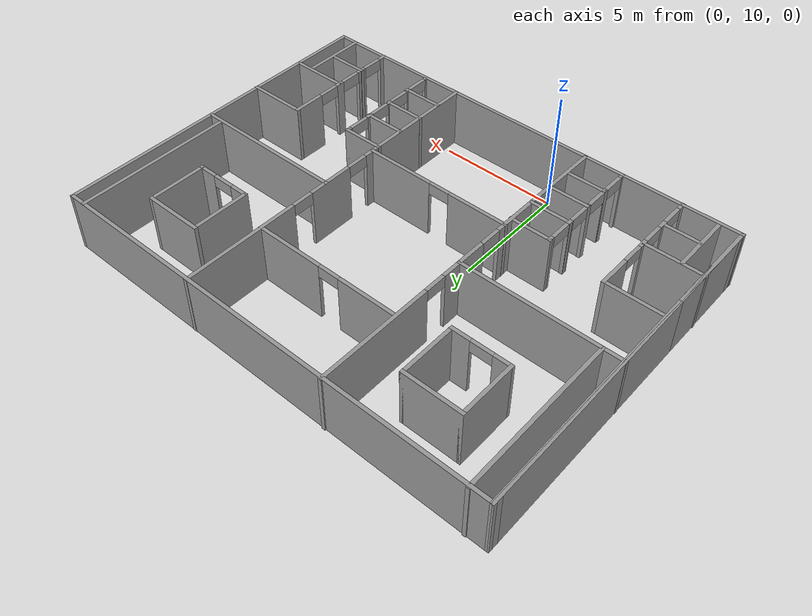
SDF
<?xml version='1.0'?>
<sdf version='1.6'>
  <model name='Mezzanino'>
    <pose frame=''>2.08931 16.402 0 0 -0 0</pose>
    <link name='Wall_103'>
      <pose frame=''>3.22743 0.000523 0 0 0 -1.5708</pose>
      <visual name='Wall_103_Visual_0'>
        <pose frame=''>-4.63496 0 1.25 0 -0 0</pose>
        <geometry>
          <box>
            <size>4.98009 0.15 2.5</size>
          </box>
        </geometry>
        <material>
          <script>
            <uri>file://media/materials/scripts/gazebo.material</uri>
            <name>Gazebo/Grey</name>
          </script>
          <ambient>1 1 1 1</ambient>
        </material>
      </visual>
      <collision name='Wall_103_Collision_0'>
        <geometry>
          <box>
            <size>4.98009 0.15 2.5</size>
          </box>
        </geometry>
        <pose frame=''>-4.63496 0 1.25 0 -0 0</pose>
      </collision>
      <visual name='Wall_103_Visual_1'>
        <pose frame=''>-0.265455 0 1.25 0 -0 0</pose>
        <geometry>
          <box>
            <size>1.95891 0.15 2.5</size>
          </box>
        </geometry>
        <material>
          <script>
            <uri>file://media/materials/scripts/gazebo.material</uri>
            <name>Gazebo/Grey</name>
          </script>
          <ambient>1 1 1 1</ambient>
        </material>
      </visual>
      <collision name='Wall_103_Collision_1'>
        <geometry>
          <box>
            <size>1.95891 0.15 2.5</size>
          </box>
        </geometry>
        <pose frame=''>-0.265455 0 1.25 0 -0 0</pose>
      </collision>
      <visual name='Wall_103_Visual_2'>
        <pose frame=''>4.3695 0 1.25 0 -0 0</pose>
        <geometry>
          <box>
            <size>5.511 0.15 2.5</size>
          </box>
        </geometry>
        <material>
          <script>
            <uri>file://media/materials/scripts/gazebo.material</uri>
            <name>Gazebo/Grey</name>
          </script>
          <ambient>1 1 1 1</ambient>
        </material>
      </visual>
      <collision name='Wall_103_Collision_2'>
        <geometry>
          <box>
            <size>5.511 0.15 2.5</size>
          </box>
        </geometry>
        <pose frame=''>4.3695 0 1.25 0 -0 0</pose>
      </collision>
      <visual name='Wall_103_Visual_3'>
        <pose frame=''>-1.69491 0 2.25 0 -0 0</pose>
        <geometry>
          <box>
            <size>0.9 0.15 0.5</size>
          </box>
        </geometry>
        <material>
          <script>
            <uri>file://media/materials/scripts/gazebo.material</uri>
            <name>Gazebo/Grey</name>
          </script>
          <ambient>1 1 1 1</ambient>
        </material>
      </visual>
      <collision name='Wall_103_Collision_3'>
        <geometry>
          <box>
            <size>0.9 0.15 0.5</size>
          </box>
        </geometry>
        <pose frame=''>-1.69491 0 2.25 0 -0 0</pose>
      </collision>
      <visual name='Wall_103_Visual_4'>
        <pose frame=''>1.164 0 2.25 0 -0 0</pose>
        <geometry>
          <box>
            <size>0.9 0.15 0.5</size>
          </box>
        </geometry>
        <material>
          <script>
            <uri>file://media/materials/scripts/gazebo.material</uri>
            <name>Gazebo/Grey</name>
          </script>
          <ambient>1 1 1 1</ambient>
        </material>
      </visual>
      <collision name='Wall_103_Collision_4'>
        <geometry>
          <box>
            <size>0.9 0.15 0.5</size>
          </box>
        </geometry>
        <pose frame=''>1.164 0 2.25 0 -0 0</pose>
      </collision>
    </link>
    <link name='Wall_105'>
      <pose frame=''>-3.04356 0.031113 0 0 0 -1.5708</pose>
      <visual name='Wall_105_Visual_0'>
        <pose frame=''>-4.65272 0 1.25 0 -0 0</pose>
        <geometry>
          <box>
            <size>4.94455 0.15 2.5</size>
          </box>
        </geometry>
        <material>
          <script>
            <uri>file://media/materials/scripts/gazebo.material</uri>
            <name>Gazebo/Grey</name>
          </script>
          <ambient>1 1 1 1</ambient>
        </material>
      </visual>
      <collision name='Wall_105_Collision_0'>
        <geometry>
          <box>
            <size>4.94455 0.15 2.5</size>
          </box>
        </geometry>
        <pose frame=''>-4.65272 0 1.25 0 -0 0</pose>
      </collision>
      <visual name='Wall_105_Visual_1'>
        <pose frame=''>-0.242635 0 1.25 0 -0 0</pose>
        <geometry>
          <box>
            <size>2.07563 0.15 2.5</size>
          </box>
        </geometry>
        <material>
          <script>
            <uri>file://media/materials/scripts/gazebo.material</uri>
            <name>Gazebo/Grey</name>
          </script>
          <ambient>1 1 1 1</ambient>
        </material>
      </visual>
      <collision name='Wall_105_Collision_1'>
        <geometry>
          <box>
            <size>2.07563 0.15 2.5</size>
          </box>
        </geometry>
        <pose frame=''>-0.242635 0 1.25 0 -0 0</pose>
      </collision>
      <visual name='Wall_105_Visual_2'>
        <pose frame=''>4.41009 0 1.25 0 -0 0</pose>
        <geometry>
          <box>
            <size>5.42982 0.15 2.5</size>
          </box>
        </geometry>
        <material>
          <script>
            <uri>file://media/materials/scripts/gazebo.material</uri>
            <name>Gazebo/Grey</name>
          </script>
          <ambient>1 1 1 1</ambient>
        </material>
      </visual>
      <collision name='Wall_105_Collision_2'>
        <geometry>
          <box>
            <size>5.42982 0.15 2.5</size>
          </box>
        </geometry>
        <pose frame=''>4.41009 0 1.25 0 -0 0</pose>
      </collision>
      <visual name='Wall_105_Visual_3'>
        <pose frame=''>-1.73045 0 2.25 0 -0 0</pose>
        <geometry>
          <box>
            <size>0.9 0.15 0.5</size>
          </box>
        </geometry>
        <material>
          <script>
            <uri>file://media/materials/scripts/gazebo.material</uri>
            <name>Gazebo/Grey</name>
          </script>
          <ambient>1 1 1 1</ambient>
        </material>
      </visual>
      <collision name='Wall_105_Collision_3'>
        <geometry>
          <box>
            <size>0.9 0.15 0.5</size>
          </box>
        </geometry>
        <pose frame=''>-1.73045 0 2.25 0 -0 0</pose>
      </collision>
      <visual name='Wall_105_Visual_4'>
        <pose frame=''>1.24518 0 2.25 0 -0 0</pose>
        <geometry>
          <box>
            <size>0.9 0.15 0.5</size>
          </box>
        </geometry>
        <material>
          <script>
            <uri>file://media/materials/scripts/gazebo.material</uri>
            <name>Gazebo/Grey</name>
          </script>
          <ambient>1 1 1 1</ambient>
        </material>
      </visual>
      <collision name='Wall_105_Collision_4'>
        <geometry>
          <box>
            <size>0.9 0.15 0.5</size>
          </box>
        </geometry>
        <pose frame=''>1.24518 0 2.25 0 -0 0</pose>
      </collision>
    </link>
    <link name='Wall_107'>
      <pose frame=''>0.07436 -2.03402 0 0 -0 0</pose>
      <visual name='Wall_107_Visual_0'>
        <pose frame=''>-1.9063 0 1.25 0 -0 0</pose>
        <geometry>
          <box>
            <size>2.5874 0.15 2.5</size>
          </box>
        </geometry>
        <material>
          <script>
            <uri>file://media/materials/scripts/gazebo.material</uri>
            <name>Gazebo/Grey</name>
          </script>
          <ambient>1 1 1 1</ambient>
        </material>
      </visual>
      <collision name='Wall_107_Collision_0'>
        <geometry>
          <box>
            <size>2.5874 0.15 2.5</size>
          </box>
        </geometry>
        <pose frame=''>-1.9063 0 1.25 0 -0 0</pose>
      </collision>
      <visual name='Wall_107_Visual_1'>
        <pose frame=''>1.7437 0 1.25 0 -0 0</pose>
        <geometry>
          <box>
            <size>2.9126 0.15 2.5</size>
          </box>
        </geometry>
        <material>
          <script>
            <uri>file://media/materials/scripts/gazebo.material</uri>
            <name>Gazebo/Grey</name>
          </script>
          <ambient>1 1 1 1</ambient>
        </material>
      </visual>
      <collision name='Wall_107_Collision_1'>
        <geometry>
          <box>
            <size>2.9126 0.15 2.5</size>
          </box>
        </geometry>
        <pose frame=''>1.7437 0 1.25 0 -0 0</pose>
      </collision>
      <visual name='Wall_107_Visual_2'>
        <pose frame=''>-0.1626 0 2.25 0 -0 0</pose>
        <geometry>
          <box>
            <size>0.9 0.15 0.5</size>
          </box>
        </geometry>
        <material>
          <script>
            <uri>file://media/materials/scripts/gazebo.material</uri>
            <name>Gazebo/Grey</name>
          </script>
          <ambient>1 1 1 1</ambient>
        </material>
      </visual>
      <collision name='Wall_107_Collision_2'>
        <geometry>
          <box>
            <size>0.9 0.15 0.5</size>
          </box>
        </geometry>
        <pose frame=''>-0.1626 0 2.25 0 -0 0</pose>
      </collision>
    </link>
    <link name='Wall_109'>
      <pose frame=''>6.13871 2.88569 0 0 -0 0</pose>
      <visual name='Wall_109_Visual_0'>
        <pose frame=''>-0.862212 0 1.25 0 -0 0</pose>
        <geometry>
          <box>
            <size>0.775575 0.15 2.5</size>
          </box>
        </geometry>
        <material>
          <script>
            <uri>file://media/materials/scripts/gazebo.material</uri>
            <name>Gazebo/Grey</name>
          </script>
          <ambient>1 1 1 1</ambient>
        </material>
      </visual>
      <collision name='Wall_109_Collision_0'>
        <geometry>
          <box>
            <size>0.775575 0.15 2.5</size>
          </box>
        </geometry>
        <pose frame=''>-0.862212 0 1.25 0 -0 0</pose>
      </collision>
      <visual name='Wall_109_Visual_1'>
        <pose frame=''>0.837788 0 1.25 0 -0 0</pose>
        <geometry>
          <box>
            <size>0.824425 0.15 2.5</size>
          </box>
        </geometry>
        <material>
          <script>
            <uri>file://media/materials/scripts/gazebo.material</uri>
            <name>Gazebo/Grey</name>
          </script>
          <ambient>1 1 1 1</ambient>
        </material>
      </visual>
      <collision name='Wall_109_Collision_1'>
        <geometry>
          <box>
            <size>0.824425 0.15 2.5</size>
          </box>
        </geometry>
        <pose frame=''>0.837788 0 1.25 0 -0 0</pose>
      </collision>
      <visual name='Wall_109_Visual_2'>
        <pose frame=''>-0.024425 0 2.25 0 -0 0</pose>
        <geometry>
          <box>
            <size>0.9 0.15 0.5</size>
          </box>
        </geometry>
        <material>
          <script>
            <uri>file://media/materials/scripts/gazebo.material</uri>
            <name>Gazebo/Grey</name>
          </script>
          <ambient>1 1 1 1</ambient>
        </material>
      </visual>
      <collision name='Wall_109_Collision_2'>
        <geometry>
          <box>
            <size>0.9 0.15 0.5</size>
          </box>
        </geometry>
        <pose frame=''>-0.024425 0 2.25 0 -0 0</pose>
      </collision>
    </link>
    <link name='Wall_11'>
      <collision name='Wall_11_Collision'>
        <geometry>
          <box>
            <size>14.0004 0.15 2.5</size>
          </box>
        </geometry>
        <pose frame=''>0 0 1.25 0 -0 0</pose>
      </collision>
      <visual name='Wall_11_Visual'>
        <pose frame=''>0 0 1.25 0 -0 0</pose>
        <geometry>
          <box>
            <size>14.0004 0.15 2.5</size>
          </box>
        </geometry>
        <material>
          <script>
            <uri>file://media/materials/scripts/gazebo.material</uri>
            <name>Gazebo/Grey</name>
          </script>
          <ambient>1 1 1 1</ambient>
        </material>
      </visual>
      <pose frame=''>-9.54461 0.110793 0 0 0 -1.57099</pose>
    </link>
    <link name='Wall_110'>
      <collision name='Wall_110_Collision'>
        <geometry>
          <box>
            <size>2.5 0.15 2.5</size>
          </box>
        </geometry>
        <pose frame=''>0 0 1.25 0 -0 0</pose>
      </collision>
      <visual name='Wall_110_Visual'>
        <pose frame=''>0 0 1.25 0 -0 0</pose>
        <geometry>
          <box>
            <size>2.5 0.15 2.5</size>
          </box>
        </geometry>
        <material>
          <script>
            <uri>file://media/materials/scripts/gazebo.material</uri>
            <name>Gazebo/Grey</name>
          </script>
          <ambient>1 1 1 1</ambient>
        </material>
      </visual>
      <pose frame=''>7.31371 4.06069 0 0 -0 1.5708</pose>
    </link>
    <link name='Wall_111'>
      <collision name='Wall_111_Collision'>
        <geometry>
          <box>
            <size>2.5 0.15 2.5</size>
          </box>
        </geometry>
        <pose frame=''>0 0 1.25 0 -0 0</pose>
      </collision>
      <visual name='Wall_111_Visual'>
        <pose frame=''>0 0 1.25 0 -0 0</pose>
        <geometry>
          <box>
            <size>2.5 0.15 2.5</size>
          </box>
        </geometry>
        <material>
          <script>
            <uri>file://media/materials/scripts/gazebo.material</uri>
            <name>Gazebo/Grey</name>
          </script>
          <ambient>1 1 1 1</ambient>
        </material>
      </visual>
      <pose frame=''>6.13871 5.23569 0 0 -0 3.14159</pose>
    </link>
    <link name='Wall_112'>
      <collision name='Wall_112_Collision'>
        <geometry>
          <box>
            <size>2.5 0.15 2.5</size>
          </box>
        </geometry>
        <pose frame=''>0 0 1.25 0 -0 0</pose>
      </collision>
      <visual name='Wall_112_Visual'>
        <pose frame=''>0 0 1.25 0 -0 0</pose>
        <geometry>
          <box>
            <size>2.5 0.15 2.5</size>
          </box>
        </geometry>
        <material>
          <script>
            <uri>file://media/materials/scripts/gazebo.material</uri>
            <name>Gazebo/Grey</name>
          </script>
          <ambient>1 1 1 1</ambient>
        </material>
      </visual>
      <pose frame=''>4.96371 4.06069 0 0 0 -1.5708</pose>
    </link>
    <link name='Wall_12'>
      <collision name='Wall_12_Collision'>
        <geometry>
          <box>
            <size>4 0.15 2.5</size>
          </box>
        </geometry>
        <pose frame=''>0 0 1.25 0 -0 0</pose>
      </collision>
      <visual name='Wall_12_Visual'>
        <pose frame=''>0 0 1.25 0 -0 0</pose>
        <geometry>
          <box>
            <size>4 0.15 2.5</size>
          </box>
        </geometry>
        <material>
          <script>
            <uri>file://media/materials/scripts/gazebo.material</uri>
            <name>Gazebo/Grey</name>
          </script>
          <ambient>1 1 1 1</ambient>
        </material>
      </visual>
      <pose frame=''>-9.54592 -4.88941 0 0 -0 1.5708</pose>
    </link>
    <link name='Wall_121'>
      <pose frame=''>0.10081 3.69241 0 0 -0 0</pose>
      <visual name='Wall_121_Visual_0'>
        <pose frame=''>-1.91291 0 1.25 0 -0 0</pose>
        <geometry>
          <box>
            <size>2.57417 0.15 2.5</size>
          </box>
        </geometry>
        <material>
          <script>
            <uri>file://media/materials/scripts/gazebo.material</uri>
            <name>Gazebo/Grey</name>
          </script>
          <ambient>1 1 1 1</ambient>
        </material>
      </visual>
      <collision name='Wall_121_Collision_0'>
        <geometry>
          <box>
            <size>2.57417 0.15 2.5</size>
          </box>
        </geometry>
        <pose frame=''>-1.91291 0 1.25 0 -0 0</pose>
      </collision>
      <visual name='Wall_121_Visual_1'>
        <pose frame=''>1.73709 0 1.25 0 -0 0</pose>
        <geometry>
          <box>
            <size>2.92583 0.15 2.5</size>
          </box>
        </geometry>
        <material>
          <script>
            <uri>file://media/materials/scripts/gazebo.material</uri>
            <name>Gazebo/Grey</name>
          </script>
          <ambient>1 1 1 1</ambient>
        </material>
      </visual>
      <collision name='Wall_121_Collision_1'>
        <geometry>
          <box>
            <size>2.92583 0.15 2.5</size>
          </box>
        </geometry>
        <pose frame=''>1.73709 0 1.25 0 -0 0</pose>
      </collision>
      <visual name='Wall_121_Visual_2'>
        <pose frame=''>-0.175825 0 2.25 0 -0 0</pose>
        <geometry>
          <box>
            <size>0.9 0.15 0.5</size>
          </box>
        </geometry>
        <material>
          <script>
            <uri>file://media/materials/scripts/gazebo.material</uri>
            <name>Gazebo/Grey</name>
          </script>
          <ambient>1 1 1 1</ambient>
        </material>
      </visual>
      <collision name='Wall_121_Collision_2'>
        <geometry>
          <box>
            <size>0.9 0.15 0.5</size>
          </box>
        </geometry>
        <pose frame=''>-0.175825 0 2.25 0 -0 0</pose>
      </collision>
    </link>
    <link name='Wall_123'>
      <collision name='Wall_123_Collision'>
        <geometry>
          <box>
            <size>6.65 0.15 2.5</size>
          </box>
        </geometry>
        <pose frame=''>0 0 1.25 0 -0 0</pose>
      </collision>
      <visual name='Wall_123_Visual'>
        <pose frame=''>0 0 1.25 0 -0 0</pose>
        <geometry>
          <box>
            <size>6.65 0.15 2.5</size>
          </box>
        </geometry>
        <material>
          <script>
            <uri>file://media/materials/scripts/gazebo.material</uri>
            <name>Gazebo/Grey</name>
          </script>
          <ambient>1 1 1 1</ambient>
        </material>
      </visual>
      <pose frame=''>-6.30731 0.465994 0 0 -0 0</pose>
    </link>
    <link name='Wall_127'>
      <collision name='Wall_127_Collision'>
        <geometry>
          <box>
            <size>2.5 0.15 2.5</size>
          </box>
        </geometry>
        <pose frame=''>0 0 1.25 0 -0 0</pose>
      </collision>
      <visual name='Wall_127_Visual'>
        <pose frame=''>0 0 1.25 0 -0 0</pose>
        <geometry>
          <box>
            <size>2.5 0.15 2.5</size>
          </box>
        </geometry>
        <material>
          <script>
            <uri>file://media/materials/scripts/gazebo.material</uri>
            <name>Gazebo/Grey</name>
          </script>
          <ambient>1 1 1 1</ambient>
        </material>
      </visual>
      <pose frame=''>-8.35589 -1.98111 0 0 -0 0</pose>
    </link>
    <link name='Wall_128'>
      <pose frame=''>-7.18089 -4.53111 0 0 0 -1.5708</pose>
      <visual name='Wall_128_Visual_0'>
        <pose frame=''>-1.92643 0 1.25 0 -0 0</pose>
        <geometry>
          <box>
            <size>1.39715 0.15 2.5</size>
          </box>
        </geometry>
        <material>
          <script>
            <uri>file://media/materials/scripts/gazebo.material</uri>
            <name>Gazebo/Grey</name>
          </script>
          <ambient>1 1 1 1</ambient>
        </material>
      </visual>
      <collision name='Wall_128_Collision_0'>
        <geometry>
          <box>
            <size>1.39715 0.15 2.5</size>
          </box>
        </geometry>
        <pose frame=''>-1.92643 0 1.25 0 -0 0</pose>
      </collision>
      <visual name='Wall_128_Visual_1'>
        <pose frame=''>-0.129825 0 1.25 0 -0 0</pose>
        <geometry>
          <box>
            <size>0.39605 0.15 2.5</size>
          </box>
        </geometry>
        <material>
          <script>
            <uri>file://media/materials/scripts/gazebo.material</uri>
            <name>Gazebo/Grey</name>
          </script>
          <ambient>1 1 1 1</ambient>
        </material>
      </visual>
      <collision name='Wall_128_Collision_1'>
        <geometry>
          <box>
            <size>0.39605 0.15 2.5</size>
          </box>
        </geometry>
        <pose frame=''>-0.129825 0 1.25 0 -0 0</pose>
      </collision>
      <visual name='Wall_128_Visual_2'>
        <pose frame=''>1.15961 0 1.25 0 -0 0</pose>
        <geometry>
          <box>
            <size>0.382825 0.15 2.5</size>
          </box>
        </geometry>
        <material>
          <script>
            <uri>file://media/materials/scripts/gazebo.material</uri>
            <name>Gazebo/Grey</name>
          </script>
          <ambient>1 1 1 1</ambient>
        </material>
      </visual>
      <collision name='Wall_128_Collision_2'>
        <geometry>
          <box>
            <size>0.382825 0.15 2.5</size>
          </box>
        </geometry>
        <pose frame=''>1.15961 0 1.25 0 -0 0</pose>
      </collision>
      <visual name='Wall_128_Visual_3'>
        <pose frame=''>2.43801 0 1.25 0 -0 0</pose>
        <geometry>
          <box>
            <size>0.373975 0.15 2.5</size>
          </box>
        </geometry>
        <material>
          <script>
            <uri>file://media/materials/scripts/gazebo.material</uri>
            <name>Gazebo/Grey</name>
          </script>
          <ambient>1 1 1 1</ambient>
        </material>
      </visual>
      <collision name='Wall_128_Collision_3'>
        <geometry>
          <box>
            <size>0.373975 0.15 2.5</size>
          </box>
        </geometry>
        <pose frame=''>2.43801 0 1.25 0 -0 0</pose>
      </collision>
      <visual name='Wall_128_Visual_4'>
        <pose frame=''>-0.77785 0 2.25 0 -0 0</pose>
        <geometry>
          <box>
            <size>0.9 0.15 0.5</size>
          </box>
        </geometry>
        <material>
          <script>
            <uri>file://media/materials/scripts/gazebo.material</uri>
            <name>Gazebo/Grey</name>
          </script>
          <ambient>1 1 1 1</ambient>
        </material>
      </visual>
      <collision name='Wall_128_Collision_4'>
        <geometry>
          <box>
            <size>0.9 0.15 0.5</size>
          </box>
        </geometry>
        <pose frame=''>-0.77785 0 2.25 0 -0 0</pose>
      </collision>
      <visual name='Wall_128_Visual_5'>
        <pose frame=''>0.5182 0 2.25 0 -0 0</pose>
        <geometry>
          <box>
            <size>0.9 0.15 0.5</size>
          </box>
        </geometry>
        <material>
          <script>
            <uri>file://media/materials/scripts/gazebo.material</uri>
            <name>Gazebo/Grey</name>
          </script>
          <ambient>1 1 1 1</ambient>
        </material>
      </visual>
      <collision name='Wall_128_Collision_5'>
        <geometry>
          <box>
            <size>0.9 0.15 0.5</size>
          </box>
        </geometry>
        <pose frame=''>0.5182 0 2.25 0 -0 0</pose>
      </collision>
      <visual name='Wall_128_Visual_6'>
        <pose frame=''>1.80103 0 2.25 0 -0 0</pose>
        <geometry>
          <box>
            <size>0.9 0.15 0.5</size>
          </box>
        </geometry>
        <material>
          <script>
            <uri>file://media/materials/scripts/gazebo.material</uri>
            <name>Gazebo/Grey</name>
          </script>
          <ambient>1 1 1 1</ambient>
        </material>
      </visual>
      <collision name='Wall_128_Collision_6'>
        <geometry>
          <box>
            <size>0.9 0.15 0.5</size>
          </box>
        </geometry>
        <pose frame=''>1.80103 0 2.25 0 -0 0</pose>
      </collision>
    </link>
    <link name='Wall_130'>
      <collision name='Wall_130_Collision'>
        <geometry>
          <box>
            <size>2.5 0.15 2.5</size>
          </box>
        </geometry>
        <pose frame=''>0 0 1.25 0 -0 0</pose>
      </collision>
      <visual name='Wall_130_Visual'>
        <pose frame=''>0 0 1.25 0 -0 0</pose>
        <geometry>
          <box>
            <size>2.5 0.15 2.5</size>
          </box>
        </geometry>
        <material>
          <script>
            <uri>file://media/materials/scripts/gazebo.material</uri>
            <name>Gazebo/Grey</name>
          </script>
          <ambient>1 1 1 1</ambient>
        </material>
      </visual>
      <pose frame=''>-8.39556 -4.42774 0 0 -0 0</pose>
    </link>
    <link name='Wall_132'>
      <collision name='Wall_132_Collision'>
        <geometry>
          <box>
            <size>2.65 0.15 2.5</size>
          </box>
        </geometry>
        <pose frame=''>0 0 1.25 0 -0 0</pose>
      </collision>
      <visual name='Wall_132_Visual'>
        <pose frame=''>0 0 1.25 0 -0 0</pose>
        <geometry>
          <box>
            <size>2.65 0.15 2.5</size>
          </box>
        </geometry>
        <material>
          <script>
            <uri>file://media/materials/scripts/gazebo.material</uri>
            <name>Gazebo/Grey</name>
          </script>
          <ambient>1 1 1 1</ambient>
        </material>
      </visual>
      <pose frame=''>-8.68449 -5.73064 0 0 0 -1.5708</pose>
    </link>
    <link name='Wall_134'>
      <collision name='Wall_134_Collision'>
        <geometry>
          <box>
            <size>1.5 0.15 2.5</size>
          </box>
        </geometry>
        <pose frame=''>0 0 1.25 0 -0 0</pose>
      </collision>
      <visual name='Wall_134_Visual'>
        <pose frame=''>0 0 1.25 0 -0 0</pose>
        <geometry>
          <box>
            <size>1.5 0.15 2.5</size>
          </box>
        </geometry>
        <material>
          <script>
            <uri>file://media/materials/scripts/gazebo.material</uri>
            <name>Gazebo/Grey</name>
          </script>
          <ambient>1 1 1 1</ambient>
        </material>
      </visual>
      <pose frame=''>-7.99627 -5.72379 0 0 -0 0</pose>
    </link>
    <link name='Wall_136'>
      <collision name='Wall_136_Collision'>
        <geometry>
          <box>
            <size>1.8 0.15 2.5</size>
          </box>
        </geometry>
        <pose frame=''>0 0 1.25 0 -0 0</pose>
      </collision>
      <visual name='Wall_136_Visual'>
        <pose frame=''>0 0 1.25 0 -0 0</pose>
        <geometry>
          <box>
            <size>1.8 0.15 2.5</size>
          </box>
        </geometry>
        <material>
          <script>
            <uri>file://media/materials/scripts/gazebo.material</uri>
            <name>Gazebo/Grey</name>
          </script>
          <ambient>1 1 1 1</ambient>
        </material>
      </visual>
      <pose frame=''>-3.84919 -2.44399 0 0 -0 3.14159</pose>
    </link>
    <link name='Wall_137'>
      <pose frame=''>-4.67419 -4.74399 0 0 0 -1.5708</pose>
      <visual name='Wall_137_Visual_0'>
        <pose frame=''>-2.2451 0 1.25 0 -0 0</pose>
        <geometry>
          <box>
            <size>0.2598 0.15 2.5</size>
          </box>
        </geometry>
        <material>
          <script>
            <uri>file://media/materials/scripts/gazebo.material</uri>
            <name>Gazebo/Grey</name>
          </script>
          <ambient>1 1 1 1</ambient>
        </material>
      </visual>
      <collision name='Wall_137_Collision_0'>
        <geometry>
          <box>
            <size>0.2598 0.15 2.5</size>
          </box>
        </geometry>
        <pose frame=''>-2.2451 0 1.25 0 -0 0</pose>
      </collision>
      <visual name='Wall_137_Visual_1'>
        <pose frame=''>-1.09652 0 1.25 0 -0 0</pose>
        <geometry>
          <box>
            <size>0.23735 0.15 2.5</size>
          </box>
        </geometry>
        <material>
          <script>
            <uri>file://media/materials/scripts/gazebo.material</uri>
            <name>Gazebo/Grey</name>
          </script>
          <ambient>1 1 1 1</ambient>
        </material>
      </visual>
      <collision name='Wall_137_Collision_1'>
        <geometry>
          <box>
            <size>0.23735 0.15 2.5</size>
          </box>
        </geometry>
        <pose frame=''>-1.09652 0 1.25 0 -0 0</pose>
      </collision>
      <visual name='Wall_137_Visual_2'>
        <pose frame=''>0.0276 0 1.25 0 -0 0</pose>
        <geometry>
          <box>
            <size>0.2109 0.15 2.5</size>
          </box>
        </geometry>
        <material>
          <script>
            <uri>file://media/materials/scripts/gazebo.material</uri>
            <name>Gazebo/Grey</name>
          </script>
          <ambient>1 1 1 1</ambient>
        </material>
      </visual>
      <collision name='Wall_137_Collision_2'>
        <geometry>
          <box>
            <size>0.2109 0.15 2.5</size>
          </box>
        </geometry>
        <pose frame=''>0.0276 0 1.25 0 -0 0</pose>
      </collision>
      <visual name='Wall_137_Visual_3'>
        <pose frame=''>1.13589 0 1.25 0 -0 0</pose>
        <geometry>
          <box>
            <size>0.205672 0.15 2.5</size>
          </box>
        </geometry>
        <material>
          <script>
            <uri>file://media/materials/scripts/gazebo.material</uri>
            <name>Gazebo/Grey</name>
          </script>
          <ambient>1 1 1 1</ambient>
        </material>
      </visual>
      <collision name='Wall_137_Collision_3'>
        <geometry>
          <box>
            <size>0.205672 0.15 2.5</size>
          </box>
        </geometry>
        <pose frame=''>1.13589 0 1.25 0 -0 0</pose>
      </collision>
      <visual name='Wall_137_Visual_4'>
        <pose frame=''>2.25686 0 1.25 0 -0 0</pose>
        <geometry>
          <box>
            <size>0.236278 0.15 2.5</size>
          </box>
        </geometry>
        <material>
          <script>
            <uri>file://media/materials/scripts/gazebo.material</uri>
            <name>Gazebo/Grey</name>
          </script>
          <ambient>1 1 1 1</ambient>
        </material>
      </visual>
      <collision name='Wall_137_Collision_4'>
        <geometry>
          <box>
            <size>0.236278 0.15 2.5</size>
          </box>
        </geometry>
        <pose frame=''>2.25686 0 1.25 0 -0 0</pose>
      </collision>
      <visual name='Wall_137_Visual_5'>
        <pose frame=''>-1.6652 0 2.25 0 -0 0</pose>
        <geometry>
          <box>
            <size>0.9 0.15 0.5</size>
          </box>
        </geometry>
        <material>
          <script>
            <uri>file://media/materials/scripts/gazebo.material</uri>
            <name>Gazebo/Grey</name>
          </script>
          <ambient>1 1 1 1</ambient>
        </material>
      </visual>
      <collision name='Wall_137_Collision_5'>
        <geometry>
          <box>
            <size>0.9 0.15 0.5</size>
          </box>
        </geometry>
        <pose frame=''>-1.6652 0 2.25 0 -0 0</pose>
      </collision>
      <visual name='Wall_137_Visual_6'>
        <pose frame=''>-0.52785 0 2.25 0 -0 0</pose>
        <geometry>
          <box>
            <size>0.9 0.15 0.5</size>
          </box>
        </geometry>
        <material>
          <script>
            <uri>file://media/materials/scripts/gazebo.material</uri>
            <name>Gazebo/Grey</name>
          </script>
          <ambient>1 1 1 1</ambient>
        </material>
      </visual>
      <collision name='Wall_137_Collision_6'>
        <geometry>
          <box>
            <size>0.9 0.15 0.5</size>
          </box>
        </geometry>
        <pose frame=''>-0.52785 0 2.25 0 -0 0</pose>
      </collision>
      <visual name='Wall_137_Visual_7'>
        <pose frame=''>0.58305 0 2.25 0 -0 0</pose>
        <geometry>
          <box>
            <size>0.9 0.15 0.5</size>
          </box>
        </geometry>
        <material>
          <script>
            <uri>file://media/materials/scripts/gazebo.material</uri>
            <name>Gazebo/Grey</name>
          </script>
          <ambient>1 1 1 1</ambient>
        </material>
      </visual>
      <collision name='Wall_137_Collision_7'>
        <geometry>
          <box>
            <size>0.9 0.15 0.5</size>
          </box>
        </geometry>
        <pose frame=''>0.58305 0 2.25 0 -0 0</pose>
      </collision>
      <visual name='Wall_137_Visual_8'>
        <pose frame=''>1.68872 0 2.25 0 -0 0</pose>
        <geometry>
          <box>
            <size>0.9 0.15 0.5</size>
          </box>
        </geometry>
        <material>
          <script>
            <uri>file://media/materials/scripts/gazebo.material</uri>
            <name>Gazebo/Grey</name>
          </script>
          <ambient>1 1 1 1</ambient>
        </material>
      </visual>
      <collision name='Wall_137_Collision_8'>
        <geometry>
          <box>
            <size>0.9 0.15 0.5</size>
          </box>
        </geometry>
        <pose frame=''>1.68872 0 2.25 0 -0 0</pose>
      </collision>
    </link>
    <link name='Wall_139'>
      <collision name='Wall_139_Collision'>
        <geometry>
          <box>
            <size>1.75 0.15 2.5</size>
          </box>
        </geometry>
        <pose frame=''>0 0 1.25 0 -0 0</pose>
      </collision>
      <visual name='Wall_139_Visual'>
        <pose frame=''>0 0 1.25 0 -0 0</pose>
        <geometry>
          <box>
            <size>1.75 0.15 2.5</size>
          </box>
        </geometry>
        <material>
          <script>
            <uri>file://media/materials/scripts/gazebo.material</uri>
            <name>Gazebo/Grey</name>
          </script>
          <ambient>1 1 1 1</ambient>
        </material>
      </visual>
      <pose frame=''>-3.88038 -3.61847 0 0 -0 0</pose>
    </link>
    <link name='Wall_14'>
      <collision name='Wall_14_Collision'>
        <geometry>
          <box>
            <size>14.25 0.15 2.5</size>
          </box>
        </geometry>
        <pose frame=''>0 0 1.25 0 -0 0</pose>
      </collision>
      <visual name='Wall_14_Visual'>
        <pose frame=''>0 0 1.25 0 -0 0</pose>
        <geometry>
          <box>
            <size>14.25 0.15 2.5</size>
          </box>
        </geometry>
        <material>
          <script>
            <uri>file://media/materials/scripts/gazebo.material</uri>
            <name>Gazebo/Grey</name>
          </script>
          <ambient>1 1 1 1</ambient>
        </material>
      </visual>
      <pose frame=''>-9.54331 -0.014005 0 0 -0 1.5708</pose>
    </link>
    <link name='Wall_141'>
      <collision name='Wall_141_Collision'>
        <geometry>
          <box>
            <size>1.75 0.15 2.5</size>
          </box>
        </geometry>
        <pose frame=''>0 0 1.25 0 -0 0</pose>
      </collision>
      <visual name='Wall_141_Visual'>
        <pose frame=''>0 0 1.25 0 -0 0</pose>
        <geometry>
          <box>
            <size>1.75 0.15 2.5</size>
          </box>
        </geometry>
        <material>
          <script>
            <uri>file://media/materials/scripts/gazebo.material</uri>
            <name>Gazebo/Grey</name>
          </script>
          <ambient>1 1 1 1</ambient>
        </material>
      </visual>
      <pose frame=''>-3.85738 -4.75697 0 0 -0 0</pose>
    </link>
    <link name='Wall_143'>
      <collision name='Wall_143_Collision'>
        <geometry>
          <box>
            <size>1.75 0.15 2.5</size>
          </box>
        </geometry>
        <pose frame=''>0 0 1.25 0 -0 0</pose>
      </collision>
      <visual name='Wall_143_Visual'>
        <pose frame=''>0 0 1.25 0 -0 0</pose>
        <geometry>
          <box>
            <size>1.75 0.15 2.5</size>
          </box>
        </geometry>
        <material>
          <script>
            <uri>file://media/materials/scripts/gazebo.material</uri>
            <name>Gazebo/Grey</name>
          </script>
          <ambient>1 1 1 1</ambient>
        </material>
      </visual>
      <pose frame=''>-3.84588 -5.83797 0 0 -0 0</pose>
    </link>
    <link name='Wall_146'>
      <collision name='Wall_146_Collision'>
        <geometry>
          <box>
            <size>6.4 0.15 2.5</size>
          </box>
        </geometry>
        <pose frame=''>0 0 1.25 0 -0 0</pose>
      </collision>
      <visual name='Wall_146_Visual'>
        <pose frame=''>0 0 1.25 0 -0 0</pose>
        <geometry>
          <box>
            <size>6.4 0.15 2.5</size>
          </box>
        </geometry>
        <material>
          <script>
            <uri>file://media/materials/scripts/gazebo.material</uri>
            <name>Gazebo/Grey</name>
          </script>
          <ambient>1 1 1 1</ambient>
        </material>
      </visual>
      <pose frame=''>6.35352 0.497887 0 0 -0 0</pose>
    </link>
    <link name='Wall_148'>
      <collision name='Wall_148_Collision'>
        <geometry>
          <box>
            <size>6.6 0.15 2.5</size>
          </box>
        </geometry>
        <pose frame=''>0 0 1.25 0 -0 0</pose>
      </collision>
      <visual name='Wall_148_Visual'>
        <pose frame=''>0 0 1.25 0 -0 0</pose>
        <geometry>
          <box>
            <size>6.6 0.15 2.5</size>
          </box>
        </geometry>
        <material>
          <script>
            <uri>file://media/materials/scripts/gazebo.material</uri>
            <name>Gazebo/Grey</name>
          </script>
          <ambient>1 1 1 1</ambient>
        </material>
      </visual>
      <pose frame=''>8.91659 3.79744 0 0 0 -1.5708</pose>
    </link>
    <link name='Wall_15'>
      <collision name='Wall_15_Collision'>
        <geometry>
          <box>
            <size>19.2474 0.15 2.5</size>
          </box>
        </geometry>
        <pose frame=''>0 0 1.25 0 -0 0</pose>
      </collision>
      <visual name='Wall_15_Visual'>
        <pose frame=''>0 0 1.25 0 -0 0</pose>
        <geometry>
          <box>
            <size>19.2474 0.15 2.5</size>
          </box>
        </geometry>
        <material>
          <script>
            <uri>file://media/materials/scripts/gazebo.material</uri>
            <name>Gazebo/Grey</name>
          </script>
          <ambient>1 1 1 1</ambient>
        </material>
      </visual>
      <pose frame=''>0.00519 7.03599 0 0 -0 0</pose>
    </link>
    <link name='Wall_150'>
      <collision name='Wall_150_Collision'>
        <geometry>
          <box>
            <size>1.75 0.15 2.5</size>
          </box>
        </geometry>
        <pose frame=''>0 0 1.25 0 -0 0</pose>
      </collision>
      <visual name='Wall_150_Visual'>
        <pose frame=''>0 0 1.25 0 -0 0</pose>
        <geometry>
          <box>
            <size>1.75 0.15 2.5</size>
          </box>
        </geometry>
        <material>
          <script>
            <uri>file://media/materials/scripts/gazebo.material</uri>
            <name>Gazebo/Grey</name>
          </script>
          <ambient>1 1 1 1</ambient>
        </material>
      </visual>
      <pose frame=''>4.01331 -2.34615 0 0 -0 0</pose>
    </link>
    <link name='Wall_151'>
      <pose frame=''>4.81331 -4.64615 0 0 0 -1.5708</pose>
      <visual name='Wall_151_Visual_0'>
        <pose frame=''>-2.25072 0 1.25 0 -0 0</pose>
        <geometry>
          <box>
            <size>0.248559 0.15 2.5</size>
          </box>
        </geometry>
        <material>
          <script>
            <uri>file://media/materials/scripts/gazebo.material</uri>
            <name>Gazebo/Grey</name>
          </script>
          <ambient>1 1 1 1</ambient>
        </material>
      </visual>
      <collision name='Wall_151_Collision_0'>
        <geometry>
          <box>
            <size>0.248559 0.15 2.5</size>
          </box>
        </geometry>
        <pose frame=''>-2.25072 0 1.25 0 -0 0</pose>
      </collision>
      <visual name='Wall_151_Visual_1'>
        <pose frame=''>-1.0757 0 1.25 0 -0 0</pose>
        <geometry>
          <box>
            <size>0.301491 0.15 2.5</size>
          </box>
        </geometry>
        <material>
          <script>
            <uri>file://media/materials/scripts/gazebo.material</uri>
            <name>Gazebo/Grey</name>
          </script>
          <ambient>1 1 1 1</ambient>
        </material>
      </visual>
      <collision name='Wall_151_Collision_1'>
        <geometry>
          <box>
            <size>0.301491 0.15 2.5</size>
          </box>
        </geometry>
        <pose frame=''>-1.0757 0 1.25 0 -0 0</pose>
      </collision>
      <visual name='Wall_151_Visual_2'>
        <pose frame=''>0.087774 0 1.25 0 -0 0</pose>
        <geometry>
          <box>
            <size>0.225447 0.15 2.5</size>
          </box>
        </geometry>
        <material>
          <script>
            <uri>file://media/materials/scripts/gazebo.material</uri>
            <name>Gazebo/Grey</name>
          </script>
          <ambient>1 1 1 1</ambient>
        </material>
      </visual>
      <collision name='Wall_151_Collision_2'>
        <geometry>
          <box>
            <size>0.225447 0.15 2.5</size>
          </box>
        </geometry>
        <pose frame=''>0.087774 0 1.25 0 -0 0</pose>
      </collision>
      <visual name='Wall_151_Visual_3'>
        <pose frame=''>1.22083 0 1.25 0 -0 0</pose>
        <geometry>
          <box>
            <size>0.240656 0.15 2.5</size>
          </box>
        </geometry>
        <material>
          <script>
            <uri>file://media/materials/scripts/gazebo.material</uri>
            <name>Gazebo/Grey</name>
          </script>
          <ambient>1 1 1 1</ambient>
        </material>
      </visual>
      <collision name='Wall_151_Collision_3'>
        <geometry>
          <box>
            <size>0.240656 0.15 2.5</size>
          </box>
        </geometry>
        <pose frame=''>1.22083 0 1.25 0 -0 0</pose>
      </collision>
      <visual name='Wall_151_Visual_4'>
        <pose frame=''>2.30808 0 1.25 0 -0 0</pose>
        <geometry>
          <box>
            <size>0.133846 0.15 2.5</size>
          </box>
        </geometry>
        <material>
          <script>
            <uri>file://media/materials/scripts/gazebo.material</uri>
            <name>Gazebo/Grey</name>
          </script>
          <ambient>1 1 1 1</ambient>
        </material>
      </visual>
      <collision name='Wall_151_Collision_4'>
        <geometry>
          <box>
            <size>0.133846 0.15 2.5</size>
          </box>
        </geometry>
        <pose frame=''>2.30808 0 1.25 0 -0 0</pose>
      </collision>
      <visual name='Wall_151_Visual_5'>
        <pose frame=''>-1.67644 0 2.25 0 -0 0</pose>
        <geometry>
          <box>
            <size>0.9 0.15 0.5</size>
          </box>
        </geometry>
        <material>
          <script>
            <uri>file://media/materials/scripts/gazebo.material</uri>
            <name>Gazebo/Grey</name>
          </script>
          <ambient>1 1 1 1</ambient>
        </material>
      </visual>
      <collision name='Wall_151_Collision_5'>
        <geometry>
          <box>
            <size>0.9 0.15 0.5</size>
          </box>
        </geometry>
        <pose frame=''>-1.67644 0 2.25 0 -0 0</pose>
      </collision>
      <visual name='Wall_151_Visual_6'>
        <pose frame=''>-0.47495 0 2.25 0 -0 0</pose>
        <geometry>
          <box>
            <size>0.9 0.15 0.5</size>
          </box>
        </geometry>
        <material>
          <script>
            <uri>file://media/materials/scripts/gazebo.material</uri>
            <name>Gazebo/Grey</name>
          </script>
          <ambient>1 1 1 1</ambient>
        </material>
      </visual>
      <collision name='Wall_151_Collision_6'>
        <geometry>
          <box>
            <size>0.9 0.15 0.5</size>
          </box>
        </geometry>
        <pose frame=''>-0.47495 0 2.25 0 -0 0</pose>
      </collision>
      <visual name='Wall_151_Visual_7'>
        <pose frame=''>0.650497 0 2.25 0 -0 0</pose>
        <geometry>
          <box>
            <size>0.9 0.15 0.5</size>
          </box>
        </geometry>
        <material>
          <script>
            <uri>file://media/materials/scripts/gazebo.material</uri>
            <name>Gazebo/Grey</name>
          </script>
          <ambient>1 1 1 1</ambient>
        </material>
      </visual>
      <collision name='Wall_151_Collision_7'>
        <geometry>
          <box>
            <size>0.9 0.15 0.5</size>
          </box>
        </geometry>
        <pose frame=''>0.650497 0 2.25 0 -0 0</pose>
      </collision>
      <visual name='Wall_151_Visual_8'>
        <pose frame=''>1.79115 0 2.25 0 -0 0</pose>
        <geometry>
          <box>
            <size>0.9 0.15 0.5</size>
          </box>
        </geometry>
        <material>
          <script>
            <uri>file://media/materials/scripts/gazebo.material</uri>
            <name>Gazebo/Grey</name>
          </script>
          <ambient>1 1 1 1</ambient>
        </material>
      </visual>
      <collision name='Wall_151_Collision_8'>
        <geometry>
          <box>
            <size>0.9 0.15 0.5</size>
          </box>
        </geometry>
        <pose frame=''>1.79115 0 2.25 0 -0 0</pose>
      </collision>
    </link>
    <link name='Wall_153'>
      <collision name='Wall_153_Collision'>
        <geometry>
          <box>
            <size>1.75 0.15 2.5</size>
          </box>
        </geometry>
        <pose frame=''>0 0 1.25 0 -0 0</pose>
      </collision>
      <visual name='Wall_153_Visual'>
        <pose frame=''>0 0 1.25 0 -0 0</pose>
        <geometry>
          <box>
            <size>1.75 0.15 2.5</size>
          </box>
        </geometry>
        <material>
          <script>
            <uri>file://media/materials/scripts/gazebo.material</uri>
            <name>Gazebo/Grey</name>
          </script>
          <ambient>1 1 1 1</ambient>
        </material>
      </visual>
      <pose frame=''>4.04064 -3.60847 0 0 -0 3.14159</pose>
    </link>
    <link name='Wall_155'>
      <collision name='Wall_155_Collision'>
        <geometry>
          <box>
            <size>1.75 0.15 2.5</size>
          </box>
        </geometry>
        <pose frame=''>0 0 1.25 0 -0 0</pose>
      </collision>
      <visual name='Wall_155_Visual'>
        <pose frame=''>0 0 1.25 0 -0 0</pose>
        <geometry>
          <box>
            <size>1.75 0.15 2.5</size>
          </box>
        </geometry>
        <material>
          <script>
            <uri>file://media/materials/scripts/gazebo.material</uri>
            <name>Gazebo/Grey</name>
          </script>
          <ambient>1 1 1 1</ambient>
        </material>
      </visual>
      <pose frame=''>4.02543 -4.74913 0 0 -0 3.14159</pose>
    </link>
    <link name='Wall_157'>
      <collision name='Wall_157_Collision'>
        <geometry>
          <box>
            <size>1.75 0.15 2.5</size>
          </box>
        </geometry>
        <pose frame=''>0 0 1.25 0 -0 0</pose>
      </collision>
      <visual name='Wall_157_Visual'>
        <pose frame=''>0 0 1.25 0 -0 0</pose>
        <geometry>
          <box>
            <size>1.75 0.15 2.5</size>
          </box>
        </geometry>
        <material>
          <script>
            <uri>file://media/materials/scripts/gazebo.material</uri>
            <name>Gazebo/Grey</name>
          </script>
          <ambient>1 1 1 1</ambient>
        </material>
      </visual>
      <pose frame=''>4.04064 -5.88979 0 0 -0 3.14159</pose>
    </link>
    <link name='Wall_159'>
      <collision name='Wall_159_Collision'>
        <geometry>
          <box>
            <size>2.5 0.15 2.5</size>
          </box>
        </geometry>
        <pose frame=''>0 0 1.25 0 -0 0</pose>
      </collision>
      <visual name='Wall_159_Visual'>
        <pose frame=''>0 0 1.25 0 -0 0</pose>
        <geometry>
          <box>
            <size>2.5 0.15 2.5</size>
          </box>
        </geometry>
        <material>
          <script>
            <uri>file://media/materials/scripts/gazebo.material</uri>
            <name>Gazebo/Grey</name>
          </script>
          <ambient>1 1 1 1</ambient>
        </material>
      </visual>
      <pose frame=''>8.39556 -1.96593 0 0 -0 3.14159</pose>
    </link>
    <link name='Wall_16'>
      <collision name='Wall_16_Collision'>
        <geometry>
          <box>
            <size>14.25 0.15 2.5</size>
          </box>
        </geometry>
        <pose frame=''>0 0 1.25 0 -0 0</pose>
      </collision>
      <visual name='Wall_16_Visual'>
        <pose frame=''>0 0 1.25 0 -0 0</pose>
        <geometry>
          <box>
            <size>14.25 0.15 2.5</size>
          </box>
        </geometry>
        <material>
          <script>
            <uri>file://media/materials/scripts/gazebo.material</uri>
            <name>Gazebo/Grey</name>
          </script>
          <ambient>1 1 1 1</ambient>
        </material>
      </visual>
      <pose frame=''>9.55369 -0.014005 0 0 0 -1.5708</pose>
    </link>
    <link name='Wall_160'>
      <pose frame=''>7.22056 -4.51593 0 0 0 -1.5708</pose>
      <visual name='Wall_160_Visual_0'>
        <pose frame=''>-1.93039 0 1.25 0 -0 0</pose>
        <geometry>
          <box>
            <size>1.38922 0.15 2.5</size>
          </box>
        </geometry>
        <material>
          <script>
            <uri>file://media/materials/scripts/gazebo.material</uri>
            <name>Gazebo/Grey</name>
          </script>
          <ambient>1 1 1 1</ambient>
        </material>
      </visual>
      <collision name='Wall_160_Collision_0'>
        <geometry>
          <box>
            <size>1.38922 0.15 2.5</size>
          </box>
        </geometry>
        <pose frame=''>-1.93039 0 1.25 0 -0 0</pose>
      </collision>
      <visual name='Wall_160_Visual_1'>
        <pose frame=''>-0.150974 0 1.25 0 -0 0</pose>
        <geometry>
          <box>
            <size>0.369622 0.15 2.5</size>
          </box>
        </geometry>
        <material>
          <script>
            <uri>file://media/materials/scripts/gazebo.material</uri>
            <name>Gazebo/Grey</name>
          </script>
          <ambient>1 1 1 1</ambient>
        </material>
      </visual>
      <collision name='Wall_160_Collision_1'>
        <geometry>
          <box>
            <size>0.369622 0.15 2.5</size>
          </box>
        </geometry>
        <pose frame=''>-0.150974 0 1.25 0 -0 0</pose>
      </collision>
      <visual name='Wall_160_Visual_2'>
        <pose frame=''>1.14509 0 1.25 0 -0 0</pose>
        <geometry>
          <box>
            <size>0.4225 0.15 2.5</size>
          </box>
        </geometry>
        <material>
          <script>
            <uri>file://media/materials/scripts/gazebo.material</uri>
            <name>Gazebo/Grey</name>
          </script>
          <ambient>1 1 1 1</ambient>
        </material>
      </visual>
      <collision name='Wall_160_Collision_2'>
        <geometry>
          <box>
            <size>0.4225 0.15 2.5</size>
          </box>
        </geometry>
        <pose frame=''>1.14509 0 1.25 0 -0 0</pose>
      </collision>
      <visual name='Wall_160_Visual_3'>
        <pose frame=''>2.44067 0 1.25 0 -0 0</pose>
        <geometry>
          <box>
            <size>0.368663 0.15 2.5</size>
          </box>
        </geometry>
        <material>
          <script>
            <uri>file://media/materials/scripts/gazebo.material</uri>
            <name>Gazebo/Grey</name>
          </script>
          <ambient>1 1 1 1</ambient>
        </material>
      </visual>
      <collision name='Wall_160_Collision_3'>
        <geometry>
          <box>
            <size>0.368663 0.15 2.5</size>
          </box>
        </geometry>
        <pose frame=''>2.44067 0 1.25 0 -0 0</pose>
      </collision>
      <visual name='Wall_160_Visual_4'>
        <pose frame=''>-0.785785 0 2.25 0 -0 0</pose>
        <geometry>
          <box>
            <size>0.9 0.15 0.5</size>
          </box>
        </geometry>
        <material>
          <script>
            <uri>file://media/materials/scripts/gazebo.material</uri>
            <name>Gazebo/Grey</name>
          </script>
          <ambient>1 1 1 1</ambient>
        </material>
      </visual>
      <collision name='Wall_160_Collision_4'>
        <geometry>
          <box>
            <size>0.9 0.15 0.5</size>
          </box>
        </geometry>
        <pose frame=''>-0.785785 0 2.25 0 -0 0</pose>
      </collision>
      <visual name='Wall_160_Visual_5'>
        <pose frame=''>0.483837 0 2.25 0 -0 0</pose>
        <geometry>
          <box>
            <size>0.9 0.15 0.5</size>
          </box>
        </geometry>
        <material>
          <script>
            <uri>file://media/materials/scripts/gazebo.material</uri>
            <name>Gazebo/Grey</name>
          </script>
          <ambient>1 1 1 1</ambient>
        </material>
      </visual>
      <collision name='Wall_160_Collision_5'>
        <geometry>
          <box>
            <size>0.9 0.15 0.5</size>
          </box>
        </geometry>
        <pose frame=''>0.483837 0 2.25 0 -0 0</pose>
      </collision>
      <visual name='Wall_160_Visual_6'>
        <pose frame=''>1.80634 0 2.25 0 -0 0</pose>
        <geometry>
          <box>
            <size>0.9 0.15 0.5</size>
          </box>
        </geometry>
        <material>
          <script>
            <uri>file://media/materials/scripts/gazebo.material</uri>
            <name>Gazebo/Grey</name>
          </script>
          <ambient>1 1 1 1</ambient>
        </material>
      </visual>
      <collision name='Wall_160_Collision_6'>
        <geometry>
          <box>
            <size>0.9 0.15 0.5</size>
          </box>
        </geometry>
        <pose frame=''>1.80634 0 2.25 0 -0 0</pose>
      </collision>
    </link>
    <link name='Wall_162'>
      <collision name='Wall_162_Collision'>
        <geometry>
          <box>
            <size>2.4 0.15 2.5</size>
          </box>
        </geometry>
        <pose frame=''>0 0 1.25 0 -0 0</pose>
      </collision>
      <visual name='Wall_162_Visual'>
        <pose frame=''>0 0 1.25 0 -0 0</pose>
        <geometry>
          <box>
            <size>2.4 0.15 2.5</size>
          </box>
        </geometry>
        <material>
          <script>
            <uri>file://media/materials/scripts/gazebo.material</uri>
            <name>Gazebo/Grey</name>
          </script>
          <ambient>1 1 1 1</ambient>
        </material>
      </visual>
      <pose frame=''>8.36869 -4.354 0 0 -0 0</pose>
    </link>
    <link name='Wall_164'>
      <collision name='Wall_164_Collision'>
        <geometry>
          <box>
            <size>1.75 0.15 2.5</size>
          </box>
        </geometry>
        <pose frame=''>0 0 1.25 0 -0 0</pose>
      </collision>
      <visual name='Wall_164_Visual'>
        <pose frame=''>0 0 1.25 0 -0 0</pose>
        <geometry>
          <box>
            <size>1.75 0.15 2.5</size>
          </box>
        </geometry>
        <material>
          <script>
            <uri>file://media/materials/scripts/gazebo.material</uri>
            <name>Gazebo/Grey</name>
          </script>
          <ambient>1 1 1 1</ambient>
        </material>
      </visual>
      <pose frame=''>7.998 -5.66166 0 0 -0 0</pose>
    </link>
    <link name='Wall_166'>
      <collision name='Wall_166_Collision'>
        <geometry>
          <box>
            <size>2.75 0.15 2.5</size>
          </box>
        </geometry>
        <pose frame=''>0 0 1.25 0 -0 0</pose>
      </collision>
      <visual name='Wall_166_Visual'>
        <pose frame=''>0 0 1.25 0 -0 0</pose>
        <geometry>
          <box>
            <size>2.75 0.15 2.5</size>
          </box>
        </geometry>
        <material>
          <script>
            <uri>file://media/materials/scripts/gazebo.material</uri>
            <name>Gazebo/Grey</name>
          </script>
          <ambient>1 1 1 1</ambient>
        </material>
      </visual>
      <pose frame=''>8.84055 -5.76086 0 0 -0 1.5708</pose>
    </link>
    <link name='Wall_168'>
      <collision name='Wall_168_Collision'>
        <geometry>
          <box>
            <size>6.75 0.15 2.5</size>
          </box>
        </geometry>
        <pose frame=''>0 0 1.25 0 -0 0</pose>
      </collision>
      <visual name='Wall_168_Visual'>
        <pose frame=''>0 0 1.25 0 -0 0</pose>
        <geometry>
          <box>
            <size>6.75 0.15 2.5</size>
          </box>
        </geometry>
        <material>
          <script>
            <uri>file://media/materials/scripts/gazebo.material</uri>
            <name>Gazebo/Grey</name>
          </script>
          <ambient>1 1 1 1</ambient>
        </material>
      </visual>
      <pose frame=''>-8.7356 3.7758 0 0 0 -1.5708</pose>
    </link>
    <link name='Wall_17'>
      <collision name='Wall_17_Collision'>
        <geometry>
          <box>
            <size>19.25 0.15 2.5</size>
          </box>
        </geometry>
        <pose frame=''>0 0 1.25 0 -0 0</pose>
      </collision>
      <visual name='Wall_17_Visual'>
        <pose frame=''>0 0 1.25 0 -0 0</pose>
        <geometry>
          <box>
            <size>19.25 0.15 2.5</size>
          </box>
        </geometry>
        <material>
          <script>
            <uri>file://media/materials/scripts/gazebo.material</uri>
            <name>Gazebo/Grey</name>
          </script>
          <ambient>1 1 1 1</ambient>
        </material>
      </visual>
      <pose frame=''>0.003886 -7.06421 0 0 0 -3.14157</pose>
    </link>
    <link name='Wall_170'>
      <collision name='Wall_170_Collision'>
        <geometry>
          <box>
            <size>2.5 0.15 2.5</size>
          </box>
        </geometry>
        <pose frame=''>0 0 1.25 0 -0 0</pose>
      </collision>
      <visual name='Wall_170_Visual'>
        <pose frame=''>0 0 1.25 0 -0 0</pose>
        <geometry>
          <box>
            <size>2.5 0.15 2.5</size>
          </box>
        </geometry>
        <material>
          <script>
            <uri>file://media/materials/scripts/gazebo.material</uri>
            <name>Gazebo/Grey</name>
          </script>
          <ambient>1 1 1 1</ambient>
        </material>
      </visual>
      <pose frame=''>-7.05911 4.08313 0 0 -0 1.5708</pose>
    </link>
    <link name='Wall_171'>
      <collision name='Wall_171_Collision'>
        <geometry>
          <box>
            <size>2.5 0.15 2.5</size>
          </box>
        </geometry>
        <pose frame=''>0 0 1.25 0 -0 0</pose>
      </collision>
      <visual name='Wall_171_Visual'>
        <pose frame=''>0 0 1.25 0 -0 0</pose>
        <geometry>
          <box>
            <size>2.5 0.15 2.5</size>
          </box>
        </geometry>
        <material>
          <script>
            <uri>file://media/materials/scripts/gazebo.material</uri>
            <name>Gazebo/Grey</name>
          </script>
          <ambient>1 1 1 1</ambient>
        </material>
      </visual>
      <pose frame=''>-5.88411 5.25813 0 0 -0 0</pose>
    </link>
    <link name='Wall_172'>
      <collision name='Wall_172_Collision'>
        <geometry>
          <box>
            <size>2.5 0.15 2.5</size>
          </box>
        </geometry>
        <pose frame=''>0 0 1.25 0 -0 0</pose>
      </collision>
      <visual name='Wall_172_Visual'>
        <pose frame=''>0 0 1.25 0 -0 0</pose>
        <geometry>
          <box>
            <size>2.5 0.15 2.5</size>
          </box>
        </geometry>
        <material>
          <script>
            <uri>file://media/materials/scripts/gazebo.material</uri>
            <name>Gazebo/Grey</name>
          </script>
          <ambient>1 1 1 1</ambient>
        </material>
      </visual>
      <pose frame=''>-4.70911 4.08313 0 0 0 -1.5708</pose>
    </link>
    <link name='Wall_173'>
      <pose frame=''>-5.88411 2.90813 0 0 -0 3.14159</pose>
      <visual name='Wall_173_Visual_0'>
        <pose frame=''>-0.826 0 1.25 0 -0 0</pose>
        <geometry>
          <box>
            <size>0.848 0.15 2.5</size>
          </box>
        </geometry>
        <material>
          <script>
            <uri>file://media/materials/scripts/gazebo.material</uri>
            <name>Gazebo/Grey</name>
          </script>
          <ambient>1 1 1 1</ambient>
        </material>
      </visual>
      <collision name='Wall_173_Collision_0'>
        <geometry>
          <box>
            <size>0.848 0.15 2.5</size>
          </box>
        </geometry>
        <pose frame=''>-0.826 0 1.25 0 -0 0</pose>
      </collision>
      <visual name='Wall_173_Visual_1'>
        <pose frame=''>0.874 0 1.25 0 -0 0</pose>
        <geometry>
          <box>
            <size>0.752 0.15 2.5</size>
          </box>
        </geometry>
        <material>
          <script>
            <uri>file://media/materials/scripts/gazebo.material</uri>
            <name>Gazebo/Grey</name>
          </script>
          <ambient>1 1 1 1</ambient>
        </material>
      </visual>
      <collision name='Wall_173_Collision_1'>
        <geometry>
          <box>
            <size>0.752 0.15 2.5</size>
          </box>
        </geometry>
        <pose frame=''>0.874 0 1.25 0 -0 0</pose>
      </collision>
      <visual name='Wall_173_Visual_2'>
        <pose frame=''>0.048 0 2.25 0 -0 0</pose>
        <geometry>
          <box>
            <size>0.9 0.15 0.5</size>
          </box>
        </geometry>
        <material>
          <script>
            <uri>file://media/materials/scripts/gazebo.material</uri>
            <name>Gazebo/Grey</name>
          </script>
          <ambient>1 1 1 1</ambient>
        </material>
      </visual>
      <collision name='Wall_173_Collision_2'>
        <geometry>
          <box>
            <size>0.9 0.15 0.5</size>
          </box>
        </geometry>
        <pose frame=''>0.048 0 2.25 0 -0 0</pose>
      </collision>
    </link>
    <static>1</static>
  </model>
</sdf>
